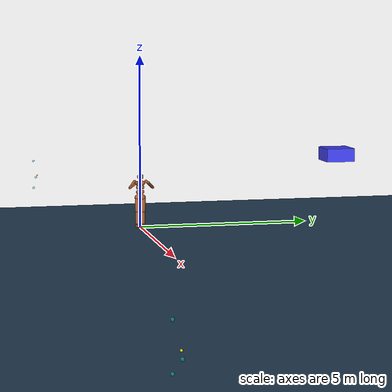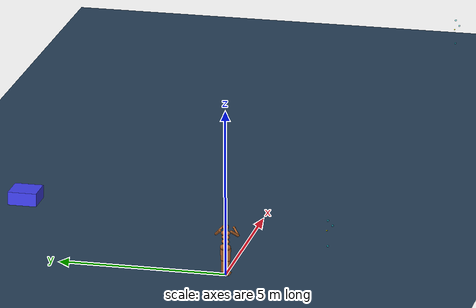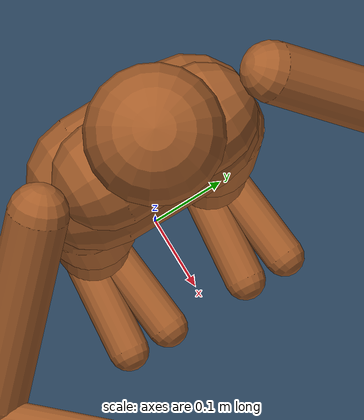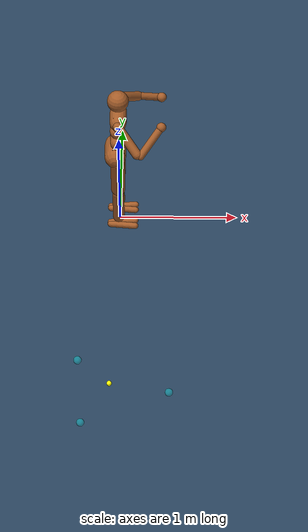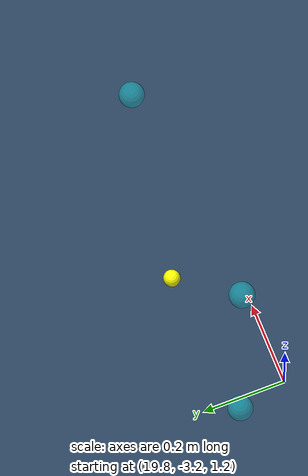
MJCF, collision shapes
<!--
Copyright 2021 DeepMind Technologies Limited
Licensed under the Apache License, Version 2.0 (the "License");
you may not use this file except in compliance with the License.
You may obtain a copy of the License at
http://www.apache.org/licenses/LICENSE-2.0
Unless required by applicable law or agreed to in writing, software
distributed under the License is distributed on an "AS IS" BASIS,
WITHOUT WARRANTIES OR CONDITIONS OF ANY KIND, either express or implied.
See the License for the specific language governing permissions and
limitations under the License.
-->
<mujoco model="Humanoid_UAV1_3CamNodeParallelV2">
  <option timestep="0.005"/>

  <visual>
    <!-- Brighter overall lighting (keeps the original humanoid scene style). -->
    <headlight ambient="0.35 0.35 0.35" diffuse="0.65 0.65 0.65" specular="0.25 0.25 0.25"/>
    <map force="0.1" zfar="30"/>
    <rgba haze="0.15 0.25 0.35 1"/>
    <global offwidth="2560" offheight="1440" elevation="-20" azimuth="120"/>
    <!-- Disable multisampling to reduce aliasing and make mask-from-depth more stable. -->
    <quality offsamples="0"/>
  </visual>

  <statistic center="0 0 0.7"/>

    <asset>
    <texture type="skybox" builtin="gradient" rgb1=".3 .5 .7" rgb2="0 0 0" width="32" height="512"/>
    <texture name="body" type="cube" builtin="flat" mark="cross" width="128" height="128" rgb1="0.8 0.6 0.4" rgb2="0.8 0.6 0.4" markrgb="1 1 1"/>
    <material name="body" texture="body" texuniform="true" rgba="0.8 0.6 .4 1"/>
    <texture name="grid" type="2d" builtin="checker" width="512" height="512" rgb1=".1 .2 .3" rgb2=".2 .3 .4"/>
    <material name="grid" texture="grid" texrepeat="1 1" texuniform="true" reflectance=".2"/>
    <texture name="uav1_tex_cgaxis_models_117_01" type="2d" file="../../../models/uav1_ascii/cgaxis_models_117_01.png"/>
    <mesh name="uav1_mesh_cgaxis_models_117_01_01" file="../../../models/uav1_ascii/meshes/uav1_mtl_cgaxis_models_117_01_01.obj" scale="0.02 0.02 0.02"/>
    <mesh name="uav1_mesh_cgaxis_models_117_01_05" file="../../../models/uav1_ascii/meshes/uav1_mtl_cgaxis_models_117_01_05.obj" scale="0.02 0.02 0.02"/>
    <mesh name="uav1_mesh_cgaxis_models_117_01_06" file="../../../models/uav1_ascii/meshes/uav1_mtl_cgaxis_models_117_01_06.obj" scale="0.02 0.02 0.02"/>
    <mesh name="uav1_mesh_cgaxis_models_117_01_03" file="../../../models/uav1_ascii/meshes/uav1_mtl_cgaxis_models_117_01_03.obj" scale="0.02 0.02 0.02"/>
    <mesh name="uav1_mesh_cgaxis_models_117_01_02" file="../../../models/uav1_ascii/meshes/uav1_mtl_cgaxis_models_117_01_02.obj" scale="0.02 0.02 0.02"/>
    <mesh name="uav1_mesh_cgaxis_models_117_01_04" file="../../../models/uav1_ascii/meshes/uav1_mtl_cgaxis_models_117_01_04.obj" scale="0.02 0.02 0.02"/>
    <material name="uav1_mat_cgaxis_models_117_01_01" texture="uav1_tex_cgaxis_models_117_01" rgba="1 1 1 1"/>
    <material name="uav1_mat_cgaxis_models_117_01_05" texture="uav1_tex_cgaxis_models_117_01" rgba="1 1 1 1"/>
    <material name="uav1_mat_cgaxis_models_117_01_06" rgba="0.027451 0.027451 0.027451 1"/>
    <material name="uav1_mat_cgaxis_models_117_01_03" rgba="0.5 0.5 0.5 1"/>
    <material name="uav1_mat_cgaxis_models_117_01_02" rgba="0.5 0.5 0.5 0.07"/>
    <material name="uav1_mat_cgaxis_models_117_01_04" rgba="0.94902 0.94902 0.94902 1"/>
  </asset>

  <default>
    <motor ctrlrange="-1 1" ctrllimited="true"/>
    <default class="body">

      <!-- geoms -->
      <geom type="capsule" condim="1" friction=".7" solimp=".9 .99 .003" solref=".015 1" material="body" group="1"/>
      <default class="thigh">
        <geom size=".06"/>
      </default>
      <default class="shin">
        <geom fromto="0 0 0 0 0 -.3"  size=".049"/>
      </default>
      <default class="foot">
        <geom size=".027"/>
        <default class="foot1">
          <geom fromto="-.07 -.01 0 .14 -.03 0"/>
        </default>
        <default class="foot2">
          <geom fromto="-.07 .01 0 .14  .03 0"/>
        </default>
      </default>
      <default class="arm_upper">
        <geom size=".04"/>
      </default>
      <default class="arm_lower">
        <geom size=".031"/>
      </default>
      <default class="hand">
        <geom type="sphere" size=".04"/>
      </default>

      <!-- joints -->
      <joint type="hinge" damping=".2" stiffness="1" armature=".01" limited="true" solimplimit="0 .99 .01"/>
      <default class="joint_big">
        <joint damping="5" stiffness="10"/>
        <default class="hip_x">
          <joint range="-30 10"/>
        </default>
        <default class="hip_z">
          <joint range="-60 35"/>
        </default>
        <default class="hip_y">
          <joint axis="0 1 0" range="-150 20"/>
        </default>
        <default class="joint_big_stiff">
          <joint stiffness="20"/>
        </default>
      </default>
      <default class="knee">
        <joint pos="0 0 .02" axis="0 -1 0" range="-160 2"/>
      </default>
      <default class="ankle">
        <joint range="-50 50"/>
        <default class="ankle_y">
          <joint pos="0 0 .08" axis="0 1 0" stiffness="6"/>
        </default>
        <default class="ankle_x">
          <joint pos="0 0 .04" stiffness="3"/>
        </default>
      </default>
      <default class="shoulder">
        <joint range="-85 60"/>
      </default>
      <default class="elbow">
        <joint range="-100 50" stiffness="0"/>
      </default>
    </default>
  </default>

  <worldbody>
    <geom name="floor" size="0 0 .05" type="plane" material="grid" condim="3"/>
    <light name="spotlight" mode="targetbodycom" target="torso" diffuse="1.2 1.2 1.2" specular="0.6 0.6 0.6" pos="0 -6 4" cutoff="30"/>
    <light name="top" pos="0 0 2" mode="trackcom" diffuse="0.9 0.9 0.9" specular="0.3 0.3 0.3"/>

    <!-- Node rig root. Cameras are mounted relative to this body. -->
    <body name="node01" pos="0 -3 1.6">
      <!-- Node origin marker -->
      <site name="node01_origin" pos="0 0 0" size="0.02" rgba="1 1 0 1"/>

      <!--
        Camera orientation:
        - x axis -> +X
        - y axis -> +Z (image up)
        => z axis (right-handed) -> -Y, so camera -Z looks along +Y.
      -->
      <camera name="node01_cam0" pos="0.45 0 0.0" xyaxes="1 0 0  0 0 1" fovy="60"/>
      <camera name="node01_cam1" pos="-0.225 0 0.389711" xyaxes="1 0 0  0 0 1" fovy="60"/>
      <camera name="node01_cam2" pos="-0.225 0 -0.389711" xyaxes="1 0 0  0 0 1" fovy="60"/>

      <!-- Small semi-transparent markers for quick visual debugging. -->
      <geom name="node01_cam0_marker" type="sphere" pos="0.45 -0.08 0.0" size="0.03" rgba="0 1 1 0.35" contype="0" conaffinity="0"/>
      <geom name="node01_cam1_marker" type="sphere" pos="-0.225 -0.08 0.389711" size="0.03" rgba="0 1 1 0.35" contype="0" conaffinity="0"/>
      <geom name="node01_cam2_marker" type="sphere" pos="-0.225 -0.08 -0.389711" size="0.03" rgba="0 1 1 0.35" contype="0" conaffinity="0"/>
	    </body>

	    <!-- Second node: translated so the two nodes cover different regions (non-overlapping views in a bounded depth range). -->
	    <body name="node02" pos="20 -3 1.6">
	      <site name="node02_origin" pos="0 0 0" size="0.02" rgba="1 1 0 1"/>

	      <camera name="node02_cam0" pos="0.45 0 0.0" xyaxes="1 0 0  0 0 1" fovy="60"/>
	      <camera name="node02_cam1" pos="-0.225 0 0.389711" xyaxes="1 0 0  0 0 1" fovy="60"/>
	      <camera name="node02_cam2" pos="-0.225 0 -0.389711" xyaxes="1 0 0  0 0 1" fovy="60"/>

	      <geom name="node02_cam0_marker" type="sphere" pos="0.45 -0.08 0.0" size="0.03" rgba="0 1 1 0.35" contype="0" conaffinity="0"/>
	      <geom name="node02_cam1_marker" type="sphere" pos="-0.225 -0.08 0.389711" size="0.03" rgba="0 1 1 0.35" contype="0" conaffinity="0"/>
	      <geom name="node02_cam2_marker" type="sphere" pos="-0.225 -0.08 -0.389711" size="0.03" rgba="0 1 1 0.35" contype="0" conaffinity="0"/>
	    </body>

		    <body name="torso" pos="0 0 1.282" childclass="body">
		      <freejoint name="root"/>
		      <geom name="torso" fromto="0 -.07 0 0 .07 0" size=".07"/>
	      <geom name="waist_upper" fromto="-.01 -.06 -.12 -.01 .06 -.12" size=".06"/>
	      <body name="head" pos="0 0 .19">
	        <geom name="head" type="sphere" size=".09"/>
	      </body>
      <body name="waist_lower" pos="-.01 0 -.26">
        <geom name="waist_lower" fromto="0 -.06 0 0 .06 0" size=".06"/>
        <joint name="abdomen_z" pos="0 0 .065" axis="0 0 1" range="-45 45" class="joint_big_stiff"/>
        <joint name="abdomen_y" pos="0 0 .065" axis="0 1 0" range="-75 30" class="joint_big"/>
        <body name="pelvis" pos="0 0 -.165">
          <joint name="abdomen_x" pos="0 0 .1" axis="1 0 0" range="-35 35" class="joint_big"/>
          <geom name="butt" fromto="-.02 -.07 0 -.02 .07 0" size=".09"/>
          <body name="thigh_right" pos="0 -.1 -.04">
            <joint name="hip_x_right" axis="1 0 0" class="hip_x"/>
            <joint name="hip_z_right" axis="0 0 1" class="hip_z"/>
            <joint name="hip_y_right" class="hip_y"/>
            <geom name="thigh_right" fromto="0 0 0 0 .01 -.34" class="thigh"/>
            <body name="shin_right" pos="0 .01 -.4">
              <joint name="knee_right" class="knee"/>
              <geom name="shin_right" class="shin"/>
              <body name="foot_right" pos="0 0 -.39">
                <joint name="ankle_y_right" class="ankle_y"/>
                <joint name="ankle_x_right" class="ankle_x" axis="1 0 .5"/>
                <geom name="foot1_right" class="foot1"/>
                <geom name="foot2_right" class="foot2"/>
              </body>
            </body>
          </body>
          <body name="thigh_left" pos="0 .1 -.04">
            <joint name="hip_x_left" axis="-1 0 0" class="hip_x"/>
            <joint name="hip_z_left" axis="0 0 -1" class="hip_z"/>
            <joint name="hip_y_left" class="hip_y"/>
            <geom name="thigh_left" fromto="0 0 0 0 -.01 -.34" class="thigh"/>
            <body name="shin_left" pos="0 -.01 -.4">
              <joint name="knee_left" class="knee"/>
              <geom name="shin_left" fromto="0 0 0 0 0 -.3" class="shin"/>
              <body name="foot_left" pos="0 0 -.39">
                <joint name="ankle_y_left" class="ankle_y"/>
                <joint name="ankle_x_left" class="ankle_x" axis="-1 0 -.5"/>
                <geom name="foot1_left" class="foot1"/>
                <geom name="foot2_left" class="foot2"/>
              </body>
            </body>
          </body>
        </body>
      </body>
      <body name="upper_arm_right" pos="0 -.17 .06">
        <joint name="shoulder1_right" axis="2 1 1"  class="shoulder"/>
        <joint name="shoulder2_right" axis="0 -1 1" class="shoulder"/>
        <geom name="upper_arm_right" fromto="0 0 0 .16 -.16 -.16" class="arm_upper"/>
        <body name="lower_arm_right" pos=".18 -.18 -.18">
          <joint name="elbow_right" axis="0 -1 1" class="elbow"/>
          <geom name="lower_arm_right" fromto=".01 .01 .01 .17 .17 .17" class="arm_lower"/>
          <body name="hand_right" pos=".18 .18 .18">
            <geom name="hand_right" zaxis="1 1 1" class="hand"/>
          </body>
        </body>
      </body>
      <body name="upper_arm_left" pos="0 .17 .06">
        <joint name="shoulder1_left" axis="-2 1 -1" class="shoulder"/>
        <joint name="shoulder2_left" axis="0 -1 -1"  class="shoulder"/>
        <geom name="upper_arm_left" fromto="0 0 0 .16 .16 -.16" class="arm_upper"/>
        <body name="lower_arm_left" pos=".18 .18 -.18">
          <joint name="elbow_left" axis="0 -1 -1" class="elbow"/>
          <geom name="lower_arm_left" fromto=".01 -.01 .01 .17 -.17 .17" class="arm_lower"/>
          <body name="hand_left" pos=".18 -.18 .18">
            <geom name="hand_left" zaxis="1 -1 1" class="hand"/>
          </body>
        </body>
      </body>
    </body>

    <!-- Dynamic target (free joint => belongs to mjCAT_DYNAMIC, useful for mask-from-depth). -->
    <body name="target" pos="0 6 2.0">
      <freejoint/>
      <inertial pos="0 0 0" mass="1" diaginertia="0.1 0.1 0.1"/>
      <body name="target_uav1" pos="0.06381794 0.11241283 -0.19634207" quat="0.7071068 0.7071068 0 0">
        <geom name="target_uav1_cgaxis_models_117_01_01" type="mesh" mesh="uav1_mesh_cgaxis_models_117_01_01" material="uav1_mat_cgaxis_models_117_01_01" contype="0" conaffinity="0" group="1"/>
        <geom name="target_uav1_cgaxis_models_117_01_05" type="mesh" mesh="uav1_mesh_cgaxis_models_117_01_05" material="uav1_mat_cgaxis_models_117_01_05" contype="0" conaffinity="0" group="1"/>
        <geom name="target_uav1_cgaxis_models_117_01_06" type="mesh" mesh="uav1_mesh_cgaxis_models_117_01_06" material="uav1_mat_cgaxis_models_117_01_06" contype="0" conaffinity="0" group="1"/>
        <geom name="target_uav1_cgaxis_models_117_01_03" type="mesh" mesh="uav1_mesh_cgaxis_models_117_01_03" material="uav1_mat_cgaxis_models_117_01_03" contype="0" conaffinity="0" group="1"/>
        <geom name="target_uav1_cgaxis_models_117_01_02" type="mesh" mesh="uav1_mesh_cgaxis_models_117_01_02" material="uav1_mat_cgaxis_models_117_01_02" contype="0" conaffinity="0" group="1"/>
        <geom name="target_uav1_cgaxis_models_117_01_04" type="mesh" mesh="uav1_mesh_cgaxis_models_117_01_04" material="uav1_mat_cgaxis_models_117_01_04" contype="0" conaffinity="0" group="1"/>
      </body>
      <geom name="target_uav1_proxy" type="box" size="0.42 0.426 0.196" rgba="0.25 0.25 0.95 0.05" contype="1" conaffinity="1" group="3"/>
    </body>
  </worldbody>

  <contact>
    <exclude body1="waist_lower" body2="thigh_right"/>
    <exclude body1="waist_lower" body2="thigh_left"/>
  </contact>

  <tendon>
    <fixed name="hamstring_right" limited="true" range="-0.3 2">
      <joint joint="hip_y_right" coef=".5"/>
      <joint joint="knee_right" coef="-.5"/>
    </fixed>
    <fixed name="hamstring_left" limited="true" range="-0.3 2">
      <joint joint="hip_y_left" coef=".5"/>
      <joint joint="knee_left" coef="-.5"/>
    </fixed>
  </tendon>

  <actuator>
    <motor name="abdomen_z"       gear="40"  joint="abdomen_z"/>
    <motor name="abdomen_y"       gear="40"  joint="abdomen_y"/>
    <motor name="abdomen_x"       gear="40"  joint="abdomen_x"/>
    <motor name="hip_x_right"     gear="40"  joint="hip_x_right"/>
    <motor name="hip_z_right"     gear="40"  joint="hip_z_right"/>
    <motor name="hip_y_right"     gear="120" joint="hip_y_right"/>
    <motor name="knee_right"      gear="80"  joint="knee_right"/>
    <motor name="ankle_y_right"   gear="20"  joint="ankle_y_right"/>
    <motor name="ankle_x_right"   gear="20"  joint="ankle_x_right"/>
    <motor name="hip_x_left"      gear="40"  joint="hip_x_left"/>
    <motor name="hip_z_left"      gear="40"  joint="hip_z_left"/>
    <motor name="hip_y_left"      gear="120" joint="hip_y_left"/>
    <motor name="knee_left"       gear="80"  joint="knee_left"/>
    <motor name="ankle_y_left"    gear="20"  joint="ankle_y_left"/>
    <motor name="ankle_x_left"    gear="20"  joint="ankle_x_left"/>
    <motor name="shoulder1_right" gear="20"  joint="shoulder1_right"/>
    <motor name="shoulder2_right" gear="20"  joint="shoulder2_right"/>
    <motor name="elbow_right"     gear="40"  joint="elbow_right"/>
    <motor name="shoulder1_left"  gear="20"  joint="shoulder1_left"/>
    <motor name="shoulder2_left"  gear="20"  joint="shoulder2_left"/>
    <motor name="elbow_left"      gear="40"  joint="elbow_left"/>
  </actuator>

  <keyframe>
    <key name="squat"
         qpos="0 0 0.596
               0.988015 0 0.154359 0
               0 0.4 0
               -0.25 -0.5 -2.5 -2.65 -0.8 0.56
               -0.25 -0.5 -2.5 -2.65 -0.8 0.56
               0 0 0 0 0 0
               0 6 2 1 0 0 0"/>
    <key name="stand_on_left_leg"
         qpos="0 0 1.21948
               0.971588 -0.179973 0.135318 -0.0729076
               -0.0516 -0.202 0.23
               -0.24 -0.007 -0.34 -1.76 -0.466 -0.0415
               -0.08 -0.01 -0.37 -0.685 -0.35 -0.09
               0.109 -0.067 -0.7 -0.05 0.12 0.16
               0 6 2 1 0 0 0"/>
    <key name="prone"
         qpos="0.4 0 0.0757706
               0.7325 0 0.680767 0
               0 0.0729 0
               0.0077 0.0019 -0.026 -0.351 -0.27 0
               0.0077 0.0019 -0.026 -0.351 -0.27 0
               0.56 -0.62 -1.752
               0.56 -0.62 -1.752
               0 6 2 1 0 0 0"/>
    <key name="supine"
         qpos="-0.4 0 0.08122
               0.722788 0 -0.69107 0
               0 -0.25 0
               0.0182 0.0142 0.3 0.042 -0.44 -0.02
               0.0182 0.0142 0.3 0.042 -0.44 -0.02
               0.186 -0.73 -1.73
               0.186 -0.73 -1.73
               0 6 2 1 0 0 0"/>
  </keyframe>
</mujoco>
